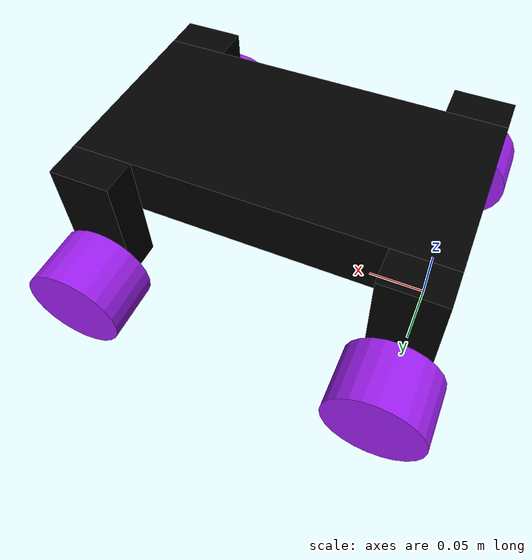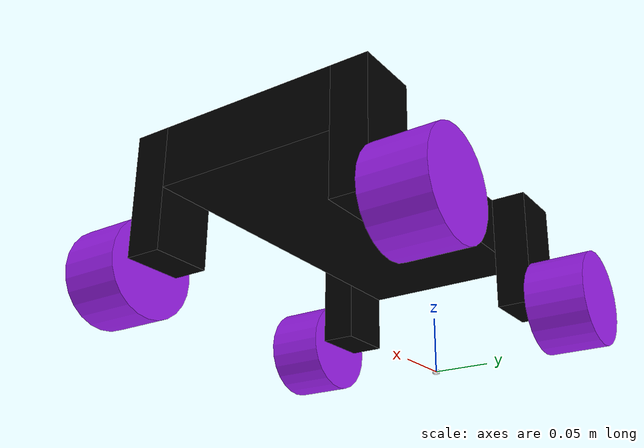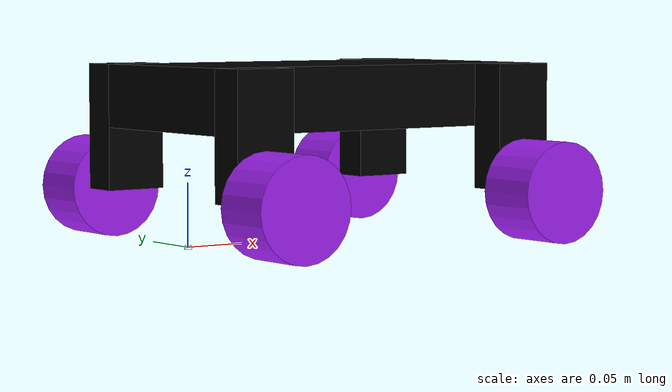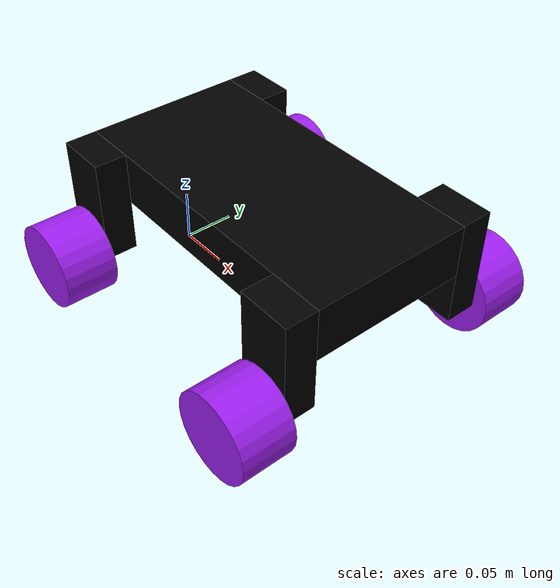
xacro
<?xml version="1.0"?>
<robot xmlns:xacro="http://ros.org/wiki/xacro" name="microver">

    <xacro:include filename="constants.xacro" />
    <xacro:include filename="inertial_macros.xacro" />
    <xacro:include filename="gazebo_control.xacro" />

    <material name="black">
        <color rgba="0 0 0 1" />
    </material>
    <material name="white">
        <color rgba="1 1 1 1" />
    </material>
    <material name="blue">
        <color rgba="0.2 0.2 1 1" />
    </material>

    <material name="purple">
        <color rgba="0.62 0.12 0.94 1" />
    </material>

    <!-- the base link located in the middle of the line between the center of both back wheels -->
    <link name="base_link">
        <visual>
            <geometry>
                <cylinder length="0.003" radius="0.003"/>
            </geometry>
            <origin xyz="0 0 0" rpy="0 0 0"/>
            <material name="white" />
        </visual>
    </link>

                    <!-- ####################### JOINTS ########################## -->

    <joint name="chassis_joint" type="fixed">
        <origin xyz="0 0 0" rpy="0 0 0" />
        <parent link="base_link" />
        <child link="chassis" />
    </joint>

                                        <!-- WHEEL JOINTS -->

    <joint name="front_left_wheel_joint" type="continuous">
        <origin xyz="${LENGTH - LEG_LENGTH} ${((WIDTH/2) + LEG_WIDTH + (WHEEL_WIDTH/2))} ${WHEEL_RADIUS}" rpy="-${pi/2} 0 0" />
        <parent link="base_link" />
        <child link="front_left_wheel_link" />
        <axis xyz="0 0 1"/>
        <limit effort="100" velocity="100"/>
        <dynamics damping="0.1" friction="0.1"/>
    </joint>

    <joint name="front_right_wheel_joint" type="continuous">
        <origin xyz="${LENGTH - LEG_LENGTH} ${-((WIDTH/2) + LEG_WIDTH + (WHEEL_WIDTH/2))} ${WHEEL_RADIUS}" rpy="${pi/2} 0 0" />
        <parent link="base_link" />
        <child link="front_right_wheel_link" />
        <axis xyz="0 0 -1"/>
        <limit effort="100" velocity="100"/>
        <dynamics damping="0.1" friction="0.1"/>
    </joint>

    <joint name="back_left_wheel_joint" type="continuous">
        <origin xyz="0 ${((WIDTH/2) + LEG_WIDTH + (WHEEL_WIDTH/2))} ${WHEEL_RADIUS}" rpy="-${pi/2} 0 0" />
        <parent link="base_link" />
        <child link="back_left_wheel_link" />
        <axis xyz="0 0 1"/>
        <limit effort="100" velocity="100"/>
        <dynamics damping="0.1" friction="0.1"/>
    </joint>

    <joint name="back_right_wheel_joint" type="continuous">
        <origin xyz="0 ${-((WIDTH/2) + LEG_WIDTH + (WHEEL_WIDTH/2))} ${WHEEL_RADIUS}" rpy="${pi/2} 0 0" />
        <parent link="base_link" />
        <child link="back_right_wheel_link" />
        <axis xyz="0 0 -1"/>
        <limit effort="100" velocity="100"/>
        <dynamics damping="0.1" friction="0.1"/>
    </joint>

                                <!-- LEG JOINTS = FIXED -->

    <joint name="back_left_leg_joint" type="fixed">
        <origin xyz="0 ${((WIDTH/2)+(LEG_WIDTH/2))} ${LEG_HEIGHT/2 + WHEEL_RADIUS}" rpy="0 0 0" />
        <parent link="base_link" />
        <child link="back_left_leg_link" />
    </joint>

    <joint name="back_right_leg_joint" type="fixed">
        <origin xyz="0 ${-((WIDTH/2)+(LEG_WIDTH/2))} ${LEG_HEIGHT/2 + WHEEL_RADIUS}" rpy="0 0 0" />
        <parent link="base_link" />
        <child link="back_right_leg_link" />
    </joint>

    <joint name="front_left_leg_joint" type="fixed">
        <origin xyz="${LENGTH - LEG_LENGTH} ${((WIDTH/2)+(LEG_WIDTH/2))} ${LEG_HEIGHT/2 + WHEEL_RADIUS}" rpy="0 0 0" />
        <parent link="base_link" />
        <child link="front_left_leg_link" />
    </joint>

    <joint name="front_right_leg_joint" type="fixed">
        <origin xyz="${LENGTH - LEG_LENGTH} ${-((WIDTH/2)+(LEG_WIDTH/2))} ${LEG_HEIGHT/2 + WHEEL_RADIUS}"
            rpy="0 0 0" />
        <parent link="base_link" />
        <child link="front_right_leg_link" />
    </joint>

                    <!-- ####################### LINKS ########################## -->

    <link name="chassis">
        <visual>
            <geometry>
                <box size="${LENGTH} ${WIDTH} ${HEIGHT}" />
            </geometry>
            <origin xyz="${LENGTH/2 - LEG_LENGTH/2} 0 ${LEG_HEIGHT - HEIGHT/2 + WHEEL_RADIUS}" rpy="0 0 0"/>
            <material name="black" />
        </visual>
        <collision>
            <geometry>
                <box size="${LENGTH} ${WIDTH} ${HEIGHT}" />
            </geometry>
            <origin xyz="${LENGTH/2 - LEG_LENGTH/2} 0 ${LEG_HEIGHT - HEIGHT/2 + WHEEL_RADIUS}" rpy="0 0 0"/>
        </collision>
        <xacro:inertial_box mass="${MASS}" x="${LENGTH}" y="${WIDTH}" z="${HEIGHT}">
            <origin xyz="${LENGTH/2 - LEG_LENGTH/2} 0 ${LEG_HEIGHT - HEIGHT/2 + WHEEL_RADIUS}" rpy="0 0 0"/>
        </xacro:inertial_box>
    </link>

                                        <!-- LEG LINKS -->

    <!-- need to add inertias for the legs -->
    <link name="back_left_leg_link">
        <visual>
            <geometry>
                <box size="${LEG_LENGTH} ${LEG_WIDTH} ${LEG_HEIGHT}" />
            </geometry>
            <material name="black" />
        </visual>
        <collision>
            <geometry>
                <box size="${LEG_LENGTH} ${LEG_WIDTH} ${LEG_HEIGHT}" />
            </geometry>
        </collision>
        <xacro:inertial_box mass="${LEG_MASS}" x="${LEG_LENGTH}" y="${LEG_WIDTH}" z="${LEG_HEIGHT}">
            <origin xyz="0 0 0" />
        </xacro:inertial_box>
    </link>

    <link name="back_right_leg_link">
        <visual>
            <geometry>
                <box size="${LEG_LENGTH} ${LEG_WIDTH} ${LEG_HEIGHT}" />
            </geometry>
            <material name="black" />
        </visual>
        <collision>
            <geometry>
                <box size="${LEG_LENGTH} ${LEG_WIDTH} ${LEG_HEIGHT}" />
            </geometry>
        </collision>
        <xacro:inertial_box mass="${LEG_MASS}" x="${LEG_LENGTH}" y="${LEG_WIDTH}" z="${LEG_HEIGHT}">
            <origin xyz="0 0 0" />
        </xacro:inertial_box>
    </link>

    <link name="front_left_leg_link">
        <visual>
            <geometry>
                <box size="${LEG_LENGTH} ${LEG_WIDTH} ${LEG_HEIGHT}" />
            </geometry>
            <material name="black" />
        </visual>
        <collision>
            <geometry>
                <box size="${LEG_LENGTH} ${LEG_WIDTH} ${LEG_HEIGHT}" />
            </geometry>
        </collision>
        <xacro:inertial_box mass="${LEG_MASS}" x="${LEG_LENGTH}" y="${LEG_WIDTH}" z="${LEG_HEIGHT}">
            <origin xyz="0 0 0" />
        </xacro:inertial_box>

    </link>

    <link name="front_right_leg_link">
        <visual>
            <geometry>
                <box size="${LEG_LENGTH} ${LEG_WIDTH} ${LEG_HEIGHT}" />
            </geometry>
            <material name="black" />
        </visual>
        <collision>
            <geometry>
                <box size="${LEG_LENGTH} ${LEG_WIDTH} ${LEG_HEIGHT}" />
            </geometry>
        </collision>
        <xacro:inertial_box mass="${LEG_MASS}" x="${LEG_LENGTH}" y="${LEG_WIDTH}" z="${LEG_HEIGHT}">
            <origin xyz="0 0 0" />
        </xacro:inertial_box>
    </link>

                                        <!-- WHEEL LINKS -->

    <link name="front_left_wheel_link">
        <visual>
            <geometry>
                <cylinder radius="${WHEEL_RADIUS}" length="${WHEEL_WIDTH}" />
            </geometry>
            <material name="purple" />
        </visual>
        <collision>
            <geometry>
                <cylinder radius="${WHEEL_RADIUS}" length="${WHEEL_WIDTH}" />
            </geometry>
        </collision>
        <xacro:inertial_cylinder mass="${WHEEL_MASS}" length="${WHEEL_WIDTH}" radius="${WHEEL_RADIUS}">
            <origin xyz="0 0 0"/>
        </xacro:inertial_cylinder>
    </link>

    <link name="front_right_wheel_link">
        <visual>
            <geometry>
                <cylinder radius="${WHEEL_RADIUS}" length="${WHEEL_WIDTH}" />
            </geometry>
            <material name="purple" />
        </visual>
        <collision>
            <geometry>
                <cylinder radius="${WHEEL_RADIUS}" length="${WHEEL_WIDTH}" />
            </geometry>
        </collision>
        <xacro:inertial_cylinder mass="${WHEEL_MASS}" length="${WHEEL_WIDTH}" radius="${WHEEL_RADIUS}">
            <origin xyz="0 0 0"/>
        </xacro:inertial_cylinder>
    </link>

    <link name="back_left_wheel_link">
        <visual>
            <geometry>
                <cylinder radius="${WHEEL_RADIUS}" length="${WHEEL_WIDTH}" />
            </geometry>
            <material name="purple" />
        </visual>
        <collision>
            <geometry>
                <cylinder radius="${WHEEL_RADIUS}" length="${WHEEL_WIDTH}" />
            </geometry>
        </collision>
        <xacro:inertial_cylinder mass="${WHEEL_MASS}" length="${WHEEL_WIDTH}" radius="${WHEEL_RADIUS}">
            <origin xyz="0 0 0"/>
        </xacro:inertial_cylinder>
    </link>

    <link name="back_right_wheel_link">
        <visual>
            <geometry>
                <cylinder radius="${WHEEL_RADIUS}" length="${WHEEL_WIDTH}" />
            </geometry>
            <material name="purple" />
        </visual>
        <collision>
            <geometry>
                <cylinder radius="${WHEEL_RADIUS}" length="${WHEEL_WIDTH}" />
            </geometry>
        </collision>
        <xacro:inertial_cylinder mass="${WHEEL_MASS}" length="${WHEEL_WIDTH}" radius="${WHEEL_RADIUS}">
            <origin xyz="0 0 0"/>
        </xacro:inertial_cylinder>
    </link>

                                                <!-- Gazebo -->

    <gazebo reference="chassis">
        <material>Gazebo/Black</material>
    </gazebo>

    <gazebo reference="back_left_leg_link">
        <material>Gazebo/Black</material>
    </gazebo>

    <gazebo reference="back_right_leg_link">
        <material>Gazebo/Black</material>
    </gazebo>

    <gazebo reference="front_left_leg_link">
        <material>Gazebo/Black</material>
    </gazebo>

    <gazebo reference="front_right_leg_link">
        <material>Gazebo/Black</material>
    </gazebo>

    <gazebo reference="front_left_wheel_link">
        <material>Gazebo/Purple</material>
        <mu1 value="${MU1}" />
        <mu2 value="${MU2}" />
    </gazebo>

    <gazebo reference="front_right_wheel_link">
        <material>Gazebo/Purple</material>
        <mu1 value="${MU1}" />
        <mu2 value="${MU2}" />
    </gazebo>

    <gazebo reference="back_left_wheel_link">
        <material>Gazebo/Purple</material>
        <mu1 value="${MU1}" />
        <mu2 value="${MU2}" />
    </gazebo>

    <gazebo reference="back_right_wheel_link">
        <material>Gazebo/Purple</material>
        <mu1 value="${MU1}" />
        <mu2 value="${MU2}" />
    </gazebo>
</robot>

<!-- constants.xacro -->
<robot xmlns:xacro="http://ros.org/wiki/xacro">

    <!-- speeds are in m/2 or rad/s, dimensions in m, weights in kg -->

    <xacro:property name="MAX_SPEED"    value="5.5"  />
    <xacro:property name="MIN_SPEED"    value="0.0"  />

    <xacro:property name="WHEEL_RADIUS" value="0.04" />
    <xacro:property name="WHEEL_WIDTH"  value="0.05"  />
    <xacro:property name="WHEELBASE"    value="0.5"  />
    <xacro:property name="WHEEL_MASS"   value="0.3"  />

    <xacro:property name="HEIGHT"       value="0.05" />
    <xacro:property name="LENGTH"       value="0.3"  />
    <xacro:property name="WIDTH"        value="0.15" />
    <xacro:property name="MASS"         value="3"    />

    <xacro:property name="LEG_WIDTH"    value="0.03" />
    <xacro:property name="LEG_HEIGHT"   value="0.1"  />
    <xacro:property name="LEG_LENGTH"   value="0.05" />
    <xacro:property name="LEG_MASS"     value="0.1"  />

    <xacro:property name="MU1"     value="0.1"  />
    <xacro:property name="MU2"     value="0.1"  />
</robot>
